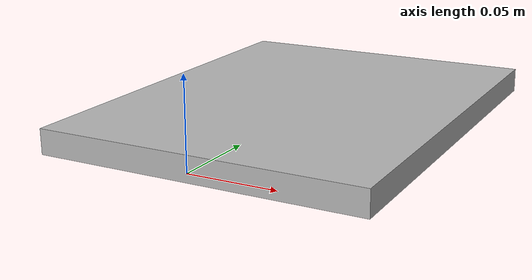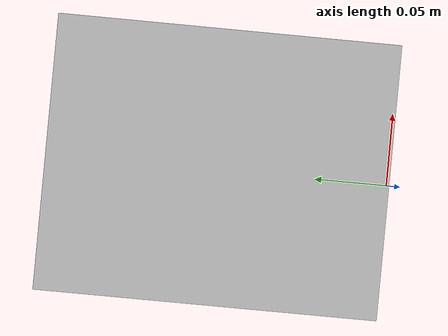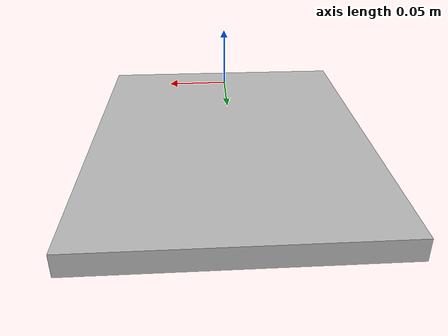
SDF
<?xml version="1.0" ?>
<sdf version="1.4">
  <model name="shelf3_plate">
    <link name="body">
      <pose>0 0 0 0 0 0</pose>
      <inertial>
        <pose>   0.002000   0.117784   0.003447 0 0 0</pose>
        <mass>0.5</mass>
        <inertia>
          <ixx>0.01</ixx>
          <ixy>0</ixy>
          <ixz>0</ixz>
          <iyy>0.01</iyy>
          <iyz>0</iyz>
          <izz>0.01</izz>
        </inertia>
      </inertial>
      <collision name="collision">
        <geometry>
          <mesh>
            <uri>model://bookshelf/shelf3_items/plate/plate.dae</uri>
          </mesh>
        </geometry>
      </collision>
      <visual name="visual">
        <geometry>
          <mesh>
            <uri>model://bookshelf/shelf3_items/plate/plate.dae</uri>
          </mesh>
        </geometry>
      </visual>
    </link>
  </model>
</sdf>
